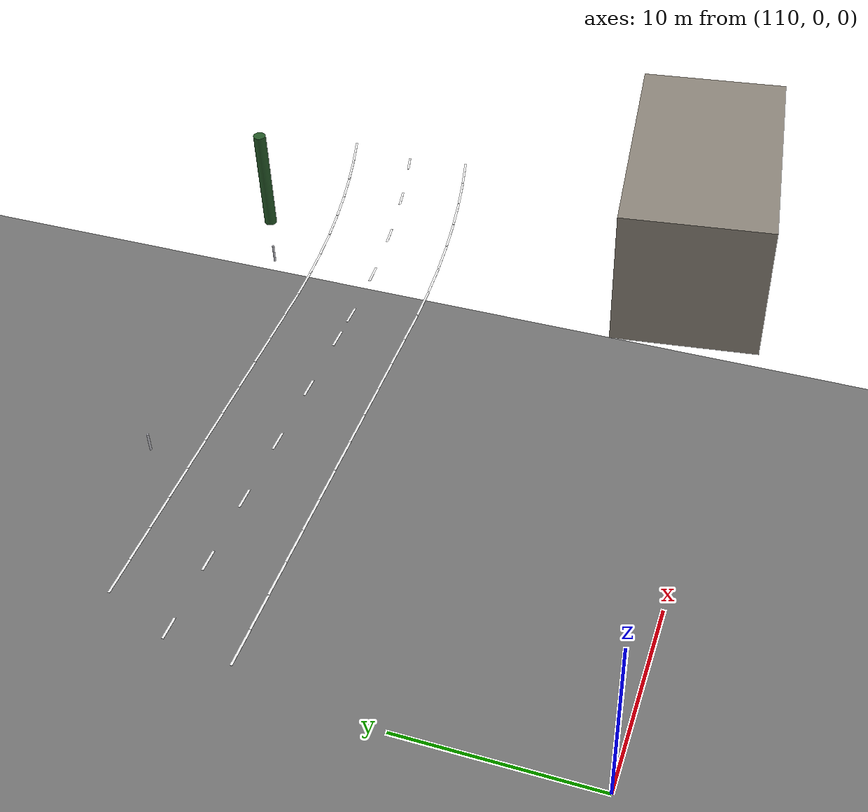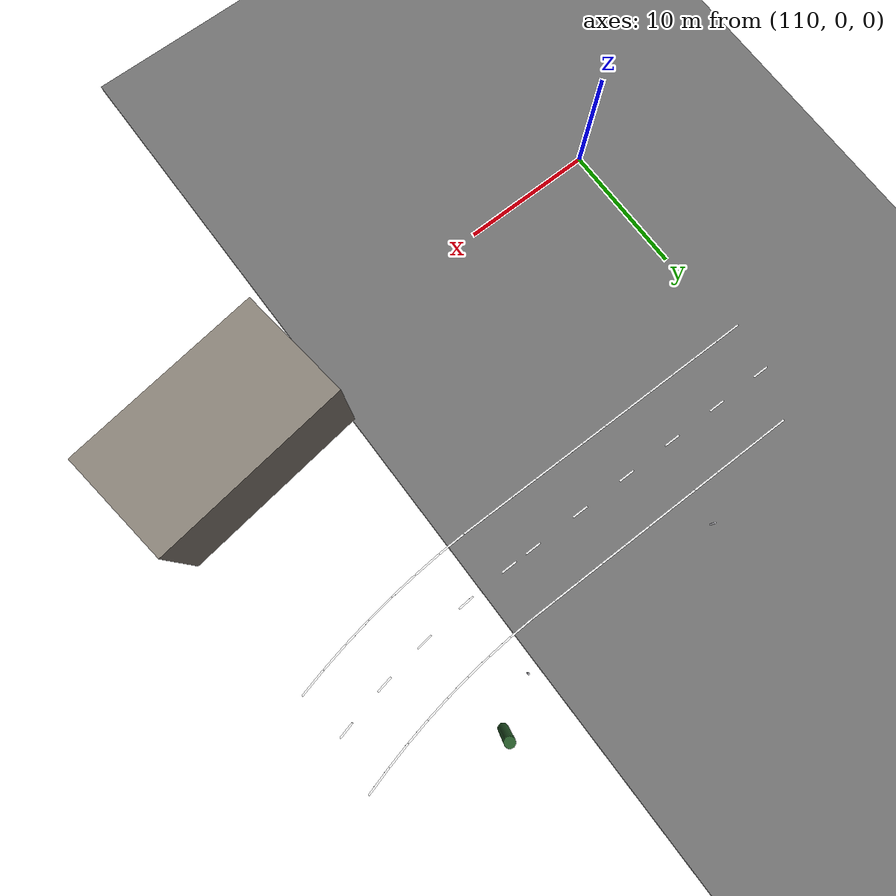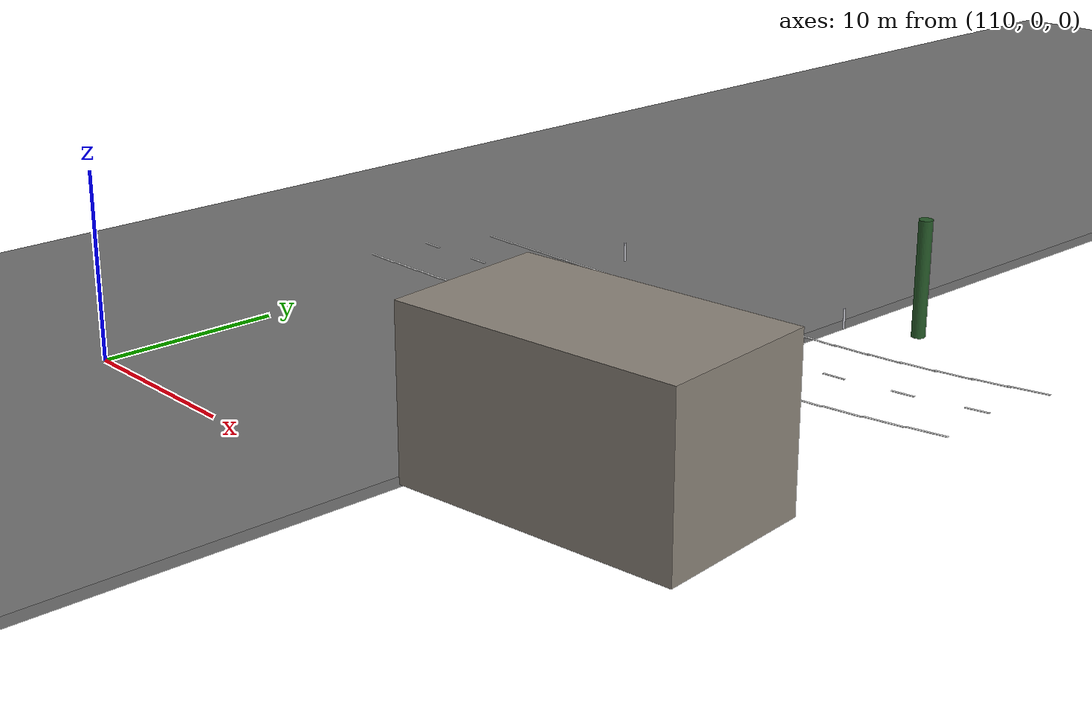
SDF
<sdf version="1.4">
 <world name="marathon_course">
  <include><uri>model://sun</uri></include>
  <model name="road_3">
   <static>true</static>
   <pose>115.20436310160932 37.70038853386919 1.7608615559415683 0 -0.017453292519943295 0</pose>
   <link name="link">
    <collision name="collision">
     <geometry><box><size>40.4 125.40077706773837 0.5</size></box></geometry>
    </collision>
    <visual name="visual">
     <geometry><box><size>40.4 125.40077706773837 0.5</size></box></geometry>
     <material><ambient>0.45 0.45 0.45 1</ambient><diffuse>0.45 0.45 0.45 1</diffuse></material>
    </visual>
   </link>
  </model>
  <model name="paint_left_edge_58">
   <static>true</static>
   <pose>113.02773157554364 24.100194266934594 1.992906393340263 0 0 0.0</pose>
   <link name="link">
    <visual name="visual">
     <geometry><box><size>2.05 0.12 0.02</size></box></geometry>
     <material><ambient>0.95 0.95 0.95 1</ambient><diffuse>0.95 0.95 0.95 1</diffuse></material>
    </visual>
   </link>
  </model>
  <model name="paint_left_edge_59">
   <static>true</static>
   <pose>115.02773157554364 24.100194266934594 2.0278165231966985 0 0 0.0</pose>
   <link name="link">
    <visual name="visual">
     <geometry><box><size>2.05 0.12 0.02</size></box></geometry>
     <material><ambient>0.95 0.95 0.95 1</ambient><diffuse>0.95 0.95 0.95 1</diffuse></material>
    </visual>
   </link>
  </model>
  <model name="paint_left_edge_60">
   <static>true</static>
   <pose>117.02773157554364 24.100194266934594 2.0627266530531334 0 0 0.0</pose>
   <link name="link">
    <visual name="visual">
     <geometry><box><size>2.05 0.12 0.02</size></box></geometry>
     <material><ambient>0.95 0.95 0.95 1</ambient><diffuse>0.95 0.95 0.95 1</diffuse></material>
    </visual>
   </link>
  </model>
  <model name="paint_left_edge_61">
   <static>true</static>
   <pose>119.02773157554364 24.100194266934594 2.097636782909569 0 0 0.0</pose>
   <link name="link">
    <visual name="visual">
     <geometry><box><size>2.05 0.12 0.02</size></box></geometry>
     <material><ambient>0.95 0.95 0.95 1</ambient><diffuse>0.95 0.95 0.95 1</diffuse></material>
    </visual>
   </link>
  </model>
  <model name="paint_left_edge_62">
   <static>true</static>
   <pose>121.02773157554364 24.100194266934594 2.1325469127660037 0 0 0.0</pose>
   <link name="link">
    <visual name="visual">
     <geometry><box><size>2.05 0.12 0.02</size></box></geometry>
     <material><ambient>0.95 0.95 0.95 1</ambient><diffuse>0.95 0.95 0.95 1</diffuse></material>
    </visual>
   </link>
  </model>
  <model name="paint_left_edge_63">
   <static>true</static>
   <pose>123.02773157554364 24.100194266934594 2.167457042622439 0 0 0.0</pose>
   <link name="link">
    <visual name="visual">
     <geometry><box><size>2.05 0.12 0.02</size></box></geometry>
     <material><ambient>0.95 0.95 0.95 1</ambient><diffuse>0.95 0.95 0.95 1</diffuse></material>
    </visual>
   </link>
  </model>
  <model name="paint_left_edge_64">
   <static>true</static>
   <pose>125.02773157554364 24.100194266934594 2.202367172478874 0 0 0.0</pose>
   <link name="link">
    <visual name="visual">
     <geometry><box><size>2.05 0.12 0.02</size></box></geometry>
     <material><ambient>0.95 0.95 0.95 1</ambient><diffuse>0.95 0.95 0.95 1</diffuse></material>
    </visual>
   </link>
  </model>
  <model name="paint_left_edge_65">
   <static>true</static>
   <pose>127.02773157554364 24.100194266934594 2.2372773023353094 0 0 0.0</pose>
   <link name="link">
    <visual name="visual">
     <geometry><box><size>2.05 0.12 0.02</size></box></geometry>
     <material><ambient>0.95 0.95 0.95 1</ambient><diffuse>0.95 0.95 0.95 1</diffuse></material>
    </visual>
   </link>
  </model>
  <model name="paint_left_edge_66">
   <static>true</static>
   <pose>129.02773157554364 24.100194266934594 2.2721874321917443 0 0 0.0</pose>
   <link name="link">
    <visual name="visual">
     <geometry><box><size>2.05 0.12 0.02</size></box></geometry>
     <material><ambient>0.95 0.95 0.95 1</ambient><diffuse>0.95 0.95 0.95 1</diffuse></material>
    </visual>
   </link>
  </model>
  <model name="paint_left_edge_67">
   <static>true</static>
   <pose>131.02773157554364 24.100194266934594 2.3070975620481797 0 0 0.0</pose>
   <link name="link">
    <visual name="visual">
     <geometry><box><size>2.05 0.12 0.02</size></box></geometry>
     <material><ambient>0.95 0.95 0.95 1</ambient><diffuse>0.95 0.95 0.95 1</diffuse></material>
    </visual>
   </link>
  </model>
  <model name="paint_left_edge_68">
   <static>true</static>
   <pose>133.02773157554364 24.100194266934594 2.342007691904615 0 0 0.0</pose>
   <link name="link">
    <visual name="visual">
     <geometry><box><size>2.05 0.12 0.02</size></box></geometry>
     <material><ambient>0.95 0.95 0.95 1</ambient><diffuse>0.95 0.95 0.95 1</diffuse></material>
    </visual>
   </link>
  </model>
  <model name="paint_left_edge_69">
   <static>true</static>
   <pose>134.8650168847031 24.13103050602952 2.3740776262676535 0 0 0.03356402407681403</pose>
   <link name="link">
    <visual name="visual">
     <geometry><box><size>2.05 0.12 0.02</size></box></geometry>
     <material><ambient>0.95 0.95 0.95 1</ambient><diffuse>0.95 0.95 0.95 1</diffuse></material>
    </visual>
   </link>
  </model>
  <model name="paint_left_edge_70">
   <static>true</static>
   <pose>136.70023260595102 24.22350448820412 2.4061114358393216 0 0 0.06712804815362806</pose>
   <link name="link">
    <visual name="visual">
     <geometry><box><size>2.05 0.12 0.02</size></box></geometry>
     <material><ambient>0.95 0.95 0.95 1</ambient><diffuse>0.95 0.95 0.95 1</diffuse></material>
    </visual>
   </link>
  </model>
  <model name="paint_left_edge_71">
   <static>true</static>
   <pose>138.5313114826382 24.377512047254747 2.438073036520584 0 0 0.10069207223044209</pose>
   <link name="link">
    <visual name="visual">
     <geometry><box><size>2.05 0.12 0.02</size></box></geometry>
     <material><ambient>0.95 0.95 0.95 1</ambient><diffuse>0.95 0.95 0.95 1</diffuse></material>
    </visual>
   </link>
  </model>
  <model name="paint_left_edge_72">
   <static>true</static>
   <pose>140.35619091801422 24.5928797032211 2.4699264255512414 0 0 0.13425609630725613</pose>
   <link name="link">
    <visual name="visual">
     <geometry><box><size>2.05 0.12 0.02</size></box></geometry>
     <material><ambient>0.95 0.95 0.95 1</ambient><diffuse>0.95 0.95 0.95 1</diffuse></material>
    </visual>
   </link>
  </model>
  <model name="paint_left_edge_73">
   <static>true</static>
   <pose>142.17281529861464 24.869364857800633 2.501635722064805 0 0 0.16782012038407015</pose>
   <link name="link">
    <visual name="visual">
     <geometry><box><size>2.05 0.12 0.02</size></box></geometry>
     <material><ambient>0.95 0.95 0.95 1</ambient><diffuse>0.95 0.95 0.95 1</diffuse></material>
    </visual>
   </link>
  </model>
  <model name="paint_left_edge_74">
   <static>true</static>
   <pose>143.9791383097821 25.206656067620443 2.5331652075060664 0 0 0.20138414446088418</pose>
   <link name="link">
    <visual name="visual">
     <geometry><box><size>2.05 0.12 0.02</size></box></geometry>
     <material><ambient>0.95 0.95 0.95 1</ambient><diffuse>0.95 0.95 0.95 1</diffuse></material>
    </visual>
   </link>
  </model>
  <model name="paint_left_edge_75">
   <static>true</static>
   <pose>145.77312524071272 25.604373395058946 2.564479365865834 0 0 0.2349481685376982</pose>
   <link name="link">
    <visual name="visual">
     <geometry><box><size>2.05 0.12 0.02</size></box></geometry>
     <material><ambient>0.95 0.95 0.95 1</ambient><diffuse>0.95 0.95 0.95 1</diffuse></material>
    </visual>
   </link>
  </model>
  <model name="paint_left_edge_76">
   <static>true</static>
   <pose>147.5527552764317 26.06206883622205 2.5955429236875154 0 0 0.26851219261451226</pose>
   <link name="link">
    <visual name="visual">
     <geometry><box><size>2.05 0.12 0.02</size></box></geometry>
     <material><ambient>0.95 0.95 0.95 1</ambient><diffuse>0.95 0.95 0.95 1</diffuse></material>
    </visual>
   </link>
  </model>
  <model name="paint_right_edge_57">
   <static>true</static>
   <pose>111.02773157554364 17.100194266934594 1.957996263483828 0 0 0.0</pose>
   <link name="link">
    <visual name="visual">
     <geometry><box><size>2.05 0.12 0.02</size></box></geometry>
     <material><ambient>0.95 0.95 0.95 1</ambient><diffuse>0.95 0.95 0.95 1</diffuse></material>
    </visual>
   </link>
  </model>
  <model name="paint_right_edge_58">
   <static>true</static>
   <pose>113.02773157554364 17.100194266934594 1.992906393340263 0 0 0.0</pose>
   <link name="link">
    <visual name="visual">
     <geometry><box><size>2.05 0.12 0.02</size></box></geometry>
     <material><ambient>0.95 0.95 0.95 1</ambient><diffuse>0.95 0.95 0.95 1</diffuse></material>
    </visual>
   </link>
  </model>
  <model name="paint_right_edge_59">
   <static>true</static>
   <pose>115.02773157554364 17.100194266934594 2.0278165231966985 0 0 0.0</pose>
   <link name="link">
    <visual name="visual">
     <geometry><box><size>2.05 0.12 0.02</size></box></geometry>
     <material><ambient>0.95 0.95 0.95 1</ambient><diffuse>0.95 0.95 0.95 1</diffuse></material>
    </visual>
   </link>
  </model>
  <model name="paint_right_edge_60">
   <static>true</static>
   <pose>117.02773157554364 17.100194266934594 2.0627266530531334 0 0 0.0</pose>
   <link name="link">
    <visual name="visual">
     <geometry><box><size>2.05 0.12 0.02</size></box></geometry>
     <material><ambient>0.95 0.95 0.95 1</ambient><diffuse>0.95 0.95 0.95 1</diffuse></material>
    </visual>
   </link>
  </model>
  <model name="paint_right_edge_61">
   <static>true</static>
   <pose>119.02773157554364 17.100194266934594 2.097636782909569 0 0 0.0</pose>
   <link name="link">
    <visual name="visual">
     <geometry><box><size>2.05 0.12 0.02</size></box></geometry>
     <material><ambient>0.95 0.95 0.95 1</ambient><diffuse>0.95 0.95 0.95 1</diffuse></material>
    </visual>
   </link>
  </model>
  <model name="paint_right_edge_62">
   <static>true</static>
   <pose>121.02773157554364 17.100194266934594 2.1325469127660037 0 0 0.0</pose>
   <link name="link">
    <visual name="visual">
     <geometry><box><size>2.05 0.12 0.02</size></box></geometry>
     <material><ambient>0.95 0.95 0.95 1</ambient><diffuse>0.95 0.95 0.95 1</diffuse></material>
    </visual>
   </link>
  </model>
  <model name="paint_right_edge_63">
   <static>true</static>
   <pose>123.02773157554364 17.100194266934594 2.167457042622439 0 0 0.0</pose>
   <link name="link">
    <visual name="visual">
     <geometry><box><size>2.05 0.12 0.02</size></box></geometry>
     <material><ambient>0.95 0.95 0.95 1</ambient><diffuse>0.95 0.95 0.95 1</diffuse></material>
    </visual>
   </link>
  </model>
  <model name="paint_right_edge_64">
   <static>true</static>
   <pose>125.02773157554364 17.100194266934594 2.202367172478874 0 0 0.0</pose>
   <link name="link">
    <visual name="visual">
     <geometry><box><size>2.05 0.12 0.02</size></box></geometry>
     <material><ambient>0.95 0.95 0.95 1</ambient><diffuse>0.95 0.95 0.95 1</diffuse></material>
    </visual>
   </link>
  </model>
  <model name="paint_right_edge_65">
   <static>true</static>
   <pose>127.02773157554364 17.100194266934594 2.2372773023353094 0 0 0.0</pose>
   <link name="link">
    <visual name="visual">
     <geometry><box><size>2.05 0.12 0.02</size></box></geometry>
     <material><ambient>0.95 0.95 0.95 1</ambient><diffuse>0.95 0.95 0.95 1</diffuse></material>
    </visual>
   </link>
  </model>
  <model name="paint_right_edge_66">
   <static>true</static>
   <pose>129.02773157554364 17.100194266934594 2.2721874321917443 0 0 0.0</pose>
   <link name="link">
    <visual name="visual">
     <geometry><box><size>2.05 0.12 0.02</size></box></geometry>
     <material><ambient>0.95 0.95 0.95 1</ambient><diffuse>0.95 0.95 0.95 1</diffuse></material>
    </visual>
   </link>
  </model>
  <model name="paint_right_edge_67">
   <static>true</static>
   <pose>131.02773157554364 17.100194266934594 2.3070975620481797 0 0 0.0</pose>
   <link name="link">
    <visual name="visual">
     <geometry><box><size>2.05 0.12 0.02</size></box></geometry>
     <material><ambient>0.95 0.95 0.95 1</ambient><diffuse>0.95 0.95 0.95 1</diffuse></material>
    </visual>
   </link>
  </model>
  <model name="paint_right_edge_68">
   <static>true</static>
   <pose>133.02773157554364 17.100194266934594 2.342007691904615 0 0 0.0</pose>
   <link name="link">
    <visual name="visual">
     <geometry><box><size>2.05 0.12 0.02</size></box></geometry>
     <material><ambient>0.95 0.95 0.95 1</ambient><diffuse>0.95 0.95 0.95 1</diffuse></material>
    </visual>
   </link>
  </model>
  <model name="paint_right_edge_69">
   <static>true</static>
   <pose>135.09992094249517 17.134973038881842 2.378177891848316 0 0 0.03356402407681403</pose>
   <link name="link">
    <visual name="visual">
     <geometry><box><size>2.05 0.12 0.02</size></box></geometry>
     <material><ambient>0.95 0.95 0.95 1</ambient><diffuse>0.95 0.95 0.95 1</diffuse></material>
    </visual>
   </link>
  </model>
  <model name="paint_right_edge_70">
   <static>true</static>
   <pose>137.16977611668804 17.239270178594744 2.4143073483058597 0 0 0.06712804815362806</pose>
   <link name="link">
    <visual name="visual">
     <geometry><box><size>2.05 0.12 0.02</size></box></geometry>
     <material><ambient>0.95 0.95 0.95 1</ambient><diffuse>0.95 0.95 0.95 1</diffuse></material>
    </visual>
   </link>
  </model>
  <model name="paint_right_edge_71">
   <static>true</static>
   <pose>139.2349655346868 17.41296820181623 2.450355363686096 0 0 0.10069207223044209</pose>
   <link name="link">
    <visual name="visual">
     <geometry><box><size>2.05 0.12 0.02</size></box></geometry>
     <material><ambient>0.95 0.95 0.95 1</ambient><diffuse>0.95 0.95 0.95 1</diffuse></material>
    </visual>
   </link>
  </model>
  <model name="paint_right_edge_72">
   <static>true</static>
   <pose>141.29316288874105 17.65587144849974 2.4862813321361985 0 0 0.13425609630725613</pose>
   <link name="link">
    <visual name="visual">
     <geometry><box><size>2.05 0.12 0.02</size></box></geometry>
     <material><ambient>0.95 0.95 0.95 1</ambient><diffuse>0.95 0.95 0.95 1</diffuse></material>
    </visual>
   </link>
  </model>
  <model name="paint_right_edge_73">
   <static>true</static>
   <pose>143.34204974722647 17.96770630320816 2.5220447852816332 0 0 0.16782012038407015</pose>
   <link name="link">
    <visual name="visual">
     <geometry><box><size>2.05 0.12 0.02</size></box></geometry>
     <material><ambient>0.95 0.95 0.95 1</ambient><diffuse>0.95 0.95 0.95 1</diffuse></material>
    </visual>
   </link>
  </model>
  <model name="paint_right_edge_74">
   <static>true</static>
   <pose>145.37931816621438 18.348121503324567 2.5576054378112745 0 0 0.20138414446088418</pose>
   <link name="link">
    <visual name="visual">
     <geometry><box><size>2.05 0.12 0.02</size></box></geometry>
     <material><ambient>0.95 0.95 0.95 1</ambient><diffuse>0.95 0.95 0.95 1</diffuse></material>
    </visual>
   </link>
  </model>
  <model name="paint_right_edge_75">
   <static>true</static>
   <pose>147.40267328922747 18.796688534727814 2.592923232856309 0 0 0.2349481685376982</pose>
   <link name="link">
    <visual name="visual">
     <geometry><box><size>2.05 0.12 0.02</size></box></geometry>
     <material><ambient>0.95 0.95 0.95 1</ambient><diffuse>0.95 0.95 0.95 1</diffuse></material>
    </visual>
   </link>
  </model>
  <model name="paint_divider_31">
   <static>true</static>
   <pose>111.02773157554364 20.600194266934594 1.957996263483828 0 0 0.0</pose>
   <link name="link">
    <visual name="visual">
     <geometry><box><size>1.2 0.12 0.02</size></box></geometry>
     <material><ambient>0.95 0.95 0.95 1</ambient><diffuse>0.95 0.95 0.95 1</diffuse></material>
    </visual>
   </link>
  </model>
  <model name="paint_divider_32">
   <static>true</static>
   <pose>115.02773157554364 20.600194266934594 2.0278165231966985 0 0 0.0</pose>
   <link name="link">
    <visual name="visual">
     <geometry><box><size>1.2 0.12 0.02</size></box></geometry>
     <material><ambient>0.95 0.95 0.95 1</ambient><diffuse>0.95 0.95 0.95 1</diffuse></material>
    </visual>
   </link>
  </model>
  <model name="paint_divider_33">
   <static>true</static>
   <pose>119.02773157554364 20.600194266934594 2.097636782909569 0 0 0.0</pose>
   <link name="link">
    <visual name="visual">
     <geometry><box><size>1.2 0.12 0.02</size></box></geometry>
     <material><ambient>0.95 0.95 0.95 1</ambient><diffuse>0.95 0.95 0.95 1</diffuse></material>
    </visual>
   </link>
  </model>
  <model name="paint_divider_34">
   <static>true</static>
   <pose>123.02773157554364 20.600194266934594 2.167457042622439 0 0 0.0</pose>
   <link name="link">
    <visual name="visual">
     <geometry><box><size>1.2 0.12 0.02</size></box></geometry>
     <material><ambient>0.95 0.95 0.95 1</ambient><diffuse>0.95 0.95 0.95 1</diffuse></material>
    </visual>
   </link>
  </model>
  <model name="paint_divider_35">
   <static>true</static>
   <pose>127.02773157554364 20.600194266934594 2.2372773023353094 0 0 0.0</pose>
   <link name="link">
    <visual name="visual">
     <geometry><box><size>1.2 0.12 0.02</size></box></geometry>
     <material><ambient>0.95 0.95 0.95 1</ambient><diffuse>0.95 0.95 0.95 1</diffuse></material>
    </visual>
   </link>
  </model>
  <model name="paint_divider_36">
   <static>true</static>
   <pose>131.02773157554364 20.600194266934594 2.3070975620481797 0 0 0.0</pose>
   <link name="link">
    <visual name="visual">
     <geometry><box><size>1.2 0.12 0.02</size></box></geometry>
     <material><ambient>0.95 0.95 0.95 1</ambient><diffuse>0.95 0.95 0.95 1</diffuse></material>
    </visual>
   </link>
  </model>
  <model name="paint_divider_37">
   <static>true</static>
   <pose>133.02773157554364 20.600194266934594 2.342007691904615 0 0 0.0</pose>
   <link name="link">
    <visual name="visual">
     <geometry><box><size>1.2 0.12 0.02</size></box></geometry>
     <material><ambient>0.95 0.95 0.95 1</ambient><diffuse>0.95 0.95 0.95 1</diffuse></material>
    </visual>
   </link>
  </model>
  <model name="paint_divider_38">
   <static>true</static>
   <pose>136.65628893730627 20.713320671320613 2.4053443962499435 0 0 0.06233318757122605</pose>
   <link name="link">
    <visual name="visual">
     <geometry><box><size>1.2 0.12 0.02</size></box></geometry>
     <material><ambient>0.95 0.95 0.95 1</ambient><diffuse>0.95 0.95 0.95 1</diffuse></material>
    </visual>
   </link>
  </model>
  <model name="paint_divider_39">
   <static>true</static>
   <pose>140.27075237125965 21.05226048247457 2.468435090170268 0 0 0.1246663751424521</pose>
   <link name="link">
    <visual name="visual">
     <geometry><box><size>1.2 0.12 0.02</size></box></geometry>
     <material><ambient>0.95 0.95 0.95 1</ambient><diffuse>0.95 0.95 0.95 1</diffuse></material>
    </visual>
   </link>
  </model>
  <model name="paint_divider_40">
   <static>true</static>
   <pose>143.85708269278342 21.61569720109555 2.531034718786501 0 0 0.18699956271367815</pose>
   <link name="link">
    <visual name="visual">
     <geometry><box><size>1.2 0.12 0.02</size></box></geometry>
     <material><ambient>0.95 0.95 0.95 1</ambient><diffuse>0.95 0.95 0.95 1</diffuse></material>
    </visual>
   </link>
  </model>
  <model name="paint_divider_41">
   <static>true</static>
   <pose>147.40134999100323 22.401442344090803 2.592900134599886 0 0 0.2493327502849042</pose>
   <link name="link">
    <visual name="visual">
     <geometry><box><size>1.2 0.12 0.02</size></box></geometry>
     <material><ambient>0.95 0.95 0.95 1</ambient><diffuse>0.95 0.95 0.95 1</diffuse></material>
    </visual>
   </link>
  </model>
  <model name="building_3">
   <static>true</static>
   <pose>142.67971565799905 3.467648807213612 6.490483700749997 0 0 0.12734710892956674</pose>
   <link name="link">
    <collision name="collision"><geometry><box><size>14.0 8.0 8.0</size></box></geometry></collision>
    <visual name="visual">
     <geometry><box><size>14.0 8.0 8.0</size></box></geometry>
     <material><ambient>0.55 0.52 0.48 1</ambient><diffuse>0.55 0.52 0.48 1</diffuse></material>
    </visual>
   </link>
  </model>
  <model name="tree_3">
   <static>true</static>
   <pose>139.50463606199264 28.26520654097086 5.435062480249446 0 0 0.12734710892956674</pose>
   <link name="link">
    <collision name="collision">
     <geometry><cylinder><radius>0.35</radius><length>6.0</length></cylinder></geometry>
    </collision>
    <visual name="visual">
     <geometry><cylinder><radius>0.35</radius><length>6.0</length></cylinder></geometry>
     <material><ambient>0.15 0.35 0.16 1</ambient><diffuse>0.15 0.35 0.16 1</diffuse></material>
    </visual>
   </link>
  </model>
  <model name="barrier_7">
   <static>true</static>
   <pose>120.66846844783024 26.450194266934595 2.631275951545452 0 0 0.0</pose>
   <link name="link">
    <collision name="collision">
     <geometry><cylinder><radius>0.06</radius><length>1.05</length></cylinder></geometry>
    </collision>
    <visual name="visual">
     <geometry><cylinder><radius>0.06</radius><length>1.05</length></cylinder></geometry>
     <material><ambient>0.75 0.75 0.78 1</ambient><diffuse>0.75 0.75 0.78 1</diffuse></material>
    </visual>
   </link>
  </model>
  <model name="barrier_8">
   <static>true</static>
   <pose>136.20527623820027 26.548629144902335 2.9024719403035975 0 0 0.06067965993445093</pose>
   <link name="link">
    <collision name="collision">
     <geometry><cylinder><radius>0.06</radius><length>1.05</length></cylinder></geometry>
    </collision>
    <visual name="visual">
     <geometry><cylinder><radius>0.06</radius><length>1.05</length></cylinder></geometry>
     <material><ambient>0.75 0.75 0.78 1</ambient><diffuse>0.75 0.75 0.78 1</diffuse></material>
    </visual>
   </link>
  </model>
 </world>
</sdf>
